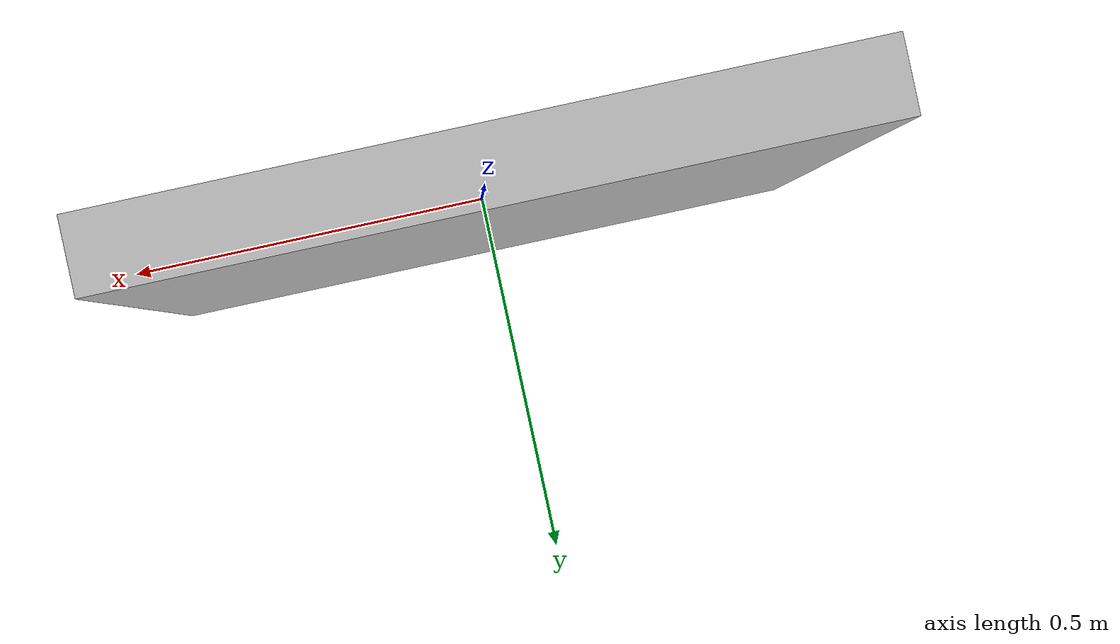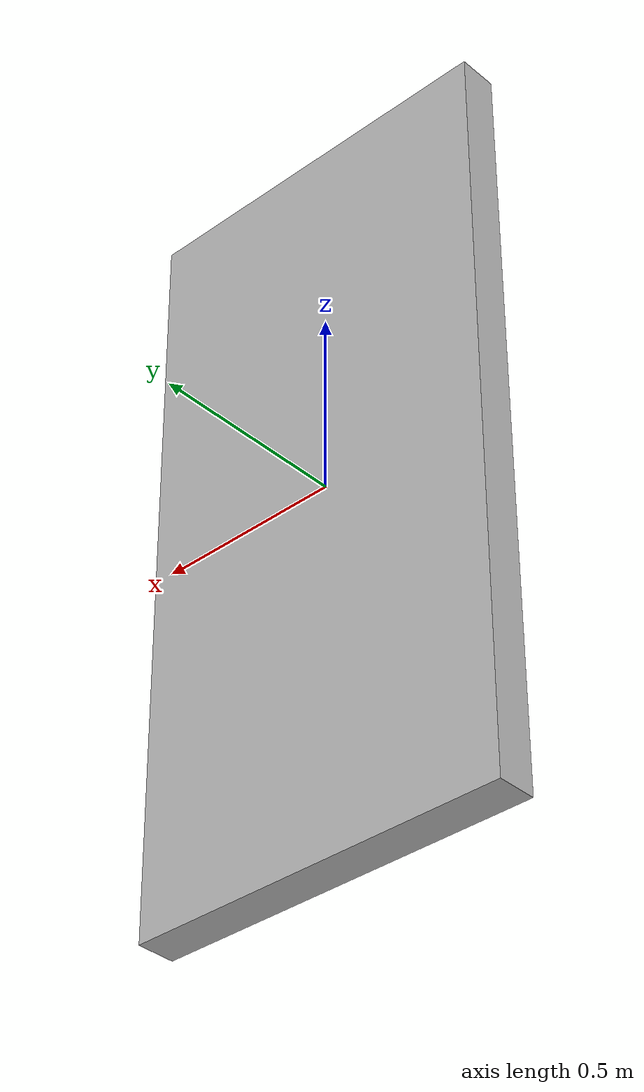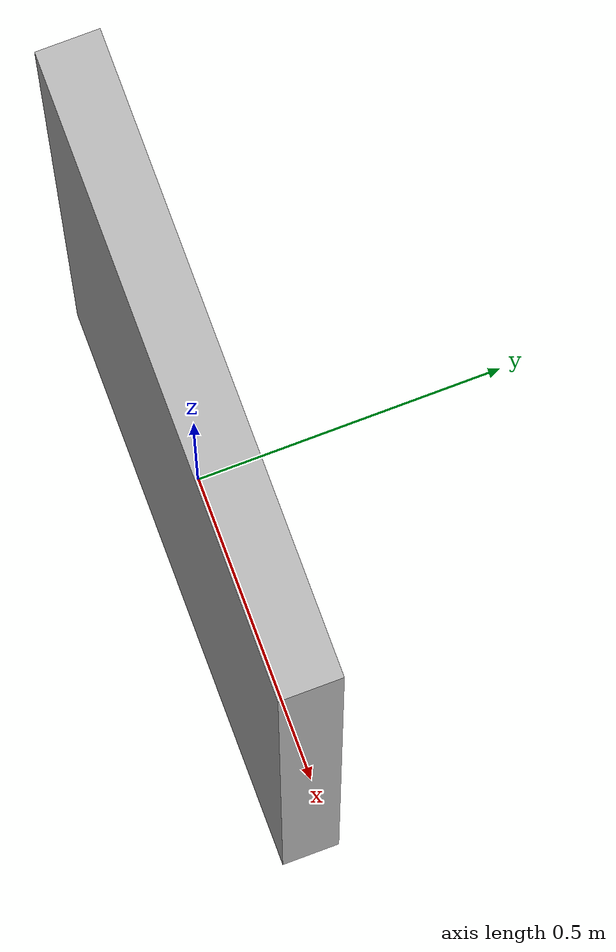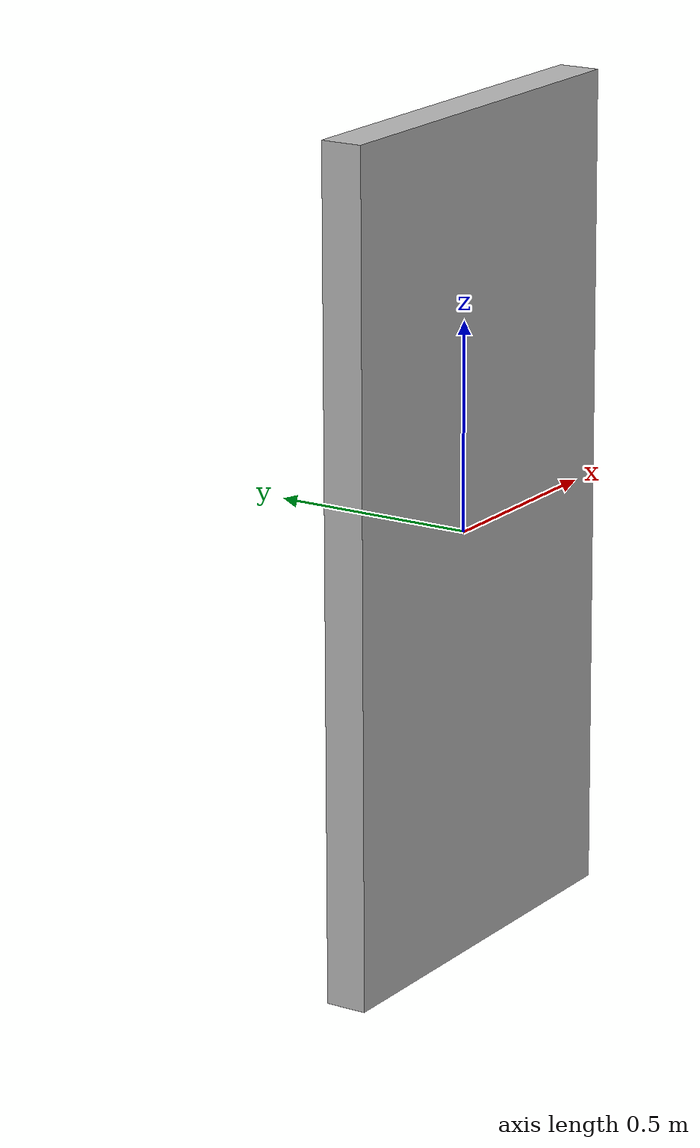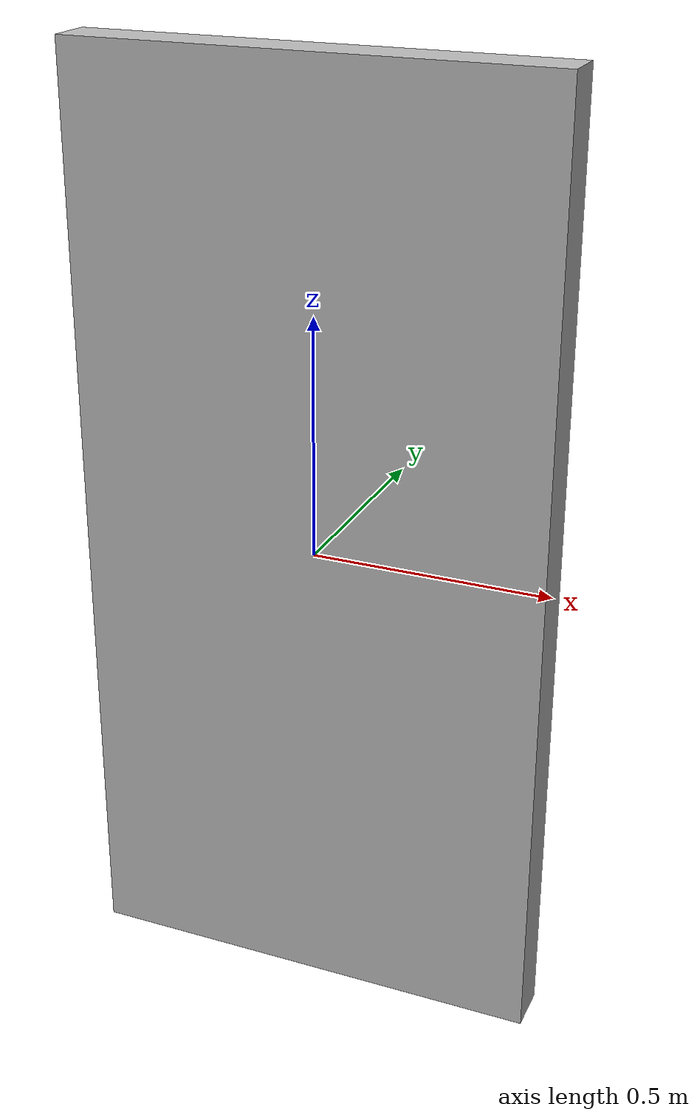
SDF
<?xml version='1.0'?>
<sdf version="1.4">
  <model name="env_large_room">
    <link name="base">
      <inertial>
        <mass>100.0</mass>
        <inertia>
          <ixx>33.4</ixx>
          <ixy>0.0</ixy>
          <ixz>0.0</ixz>
          <iyy>41.7</iyy>
          <iyz>0.0</iyz>
          <izz>8.42</izz>
        </inertia>
      </inertial>
      <collision name="collision">
        <geometry>
          <box>
            <size>1.0 0.1 2.0</size>
          </box>
        </geometry>
      </collision>
      <visual name="visual">
        <geometry>
          <box>
            <size>1.0 0.1 2.0</size>
          </box>
        </geometry>
        <material>
          <script>
            <uri>model://env_wall/materials/test_texture.material</uri>
            <name>WallTexture01</name>
          </script>
        </material>
      </visual>
    </link>

  </model>
</sdf>
